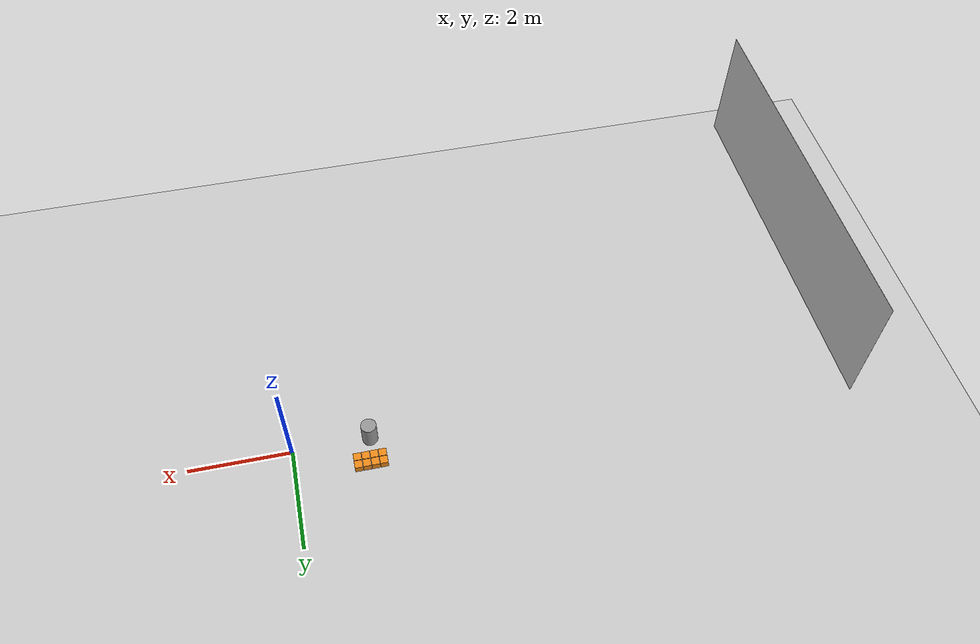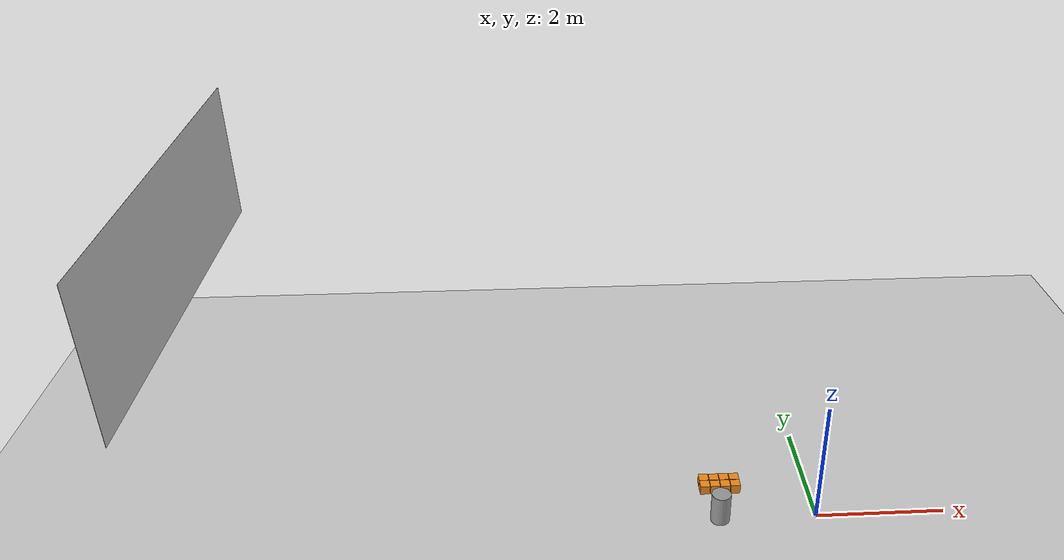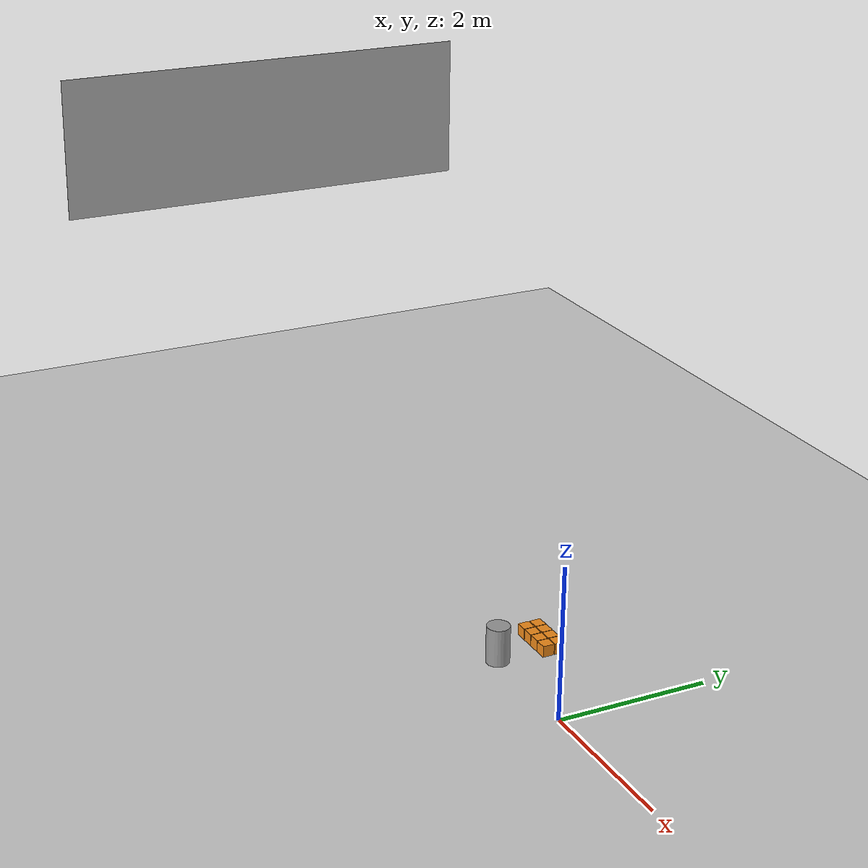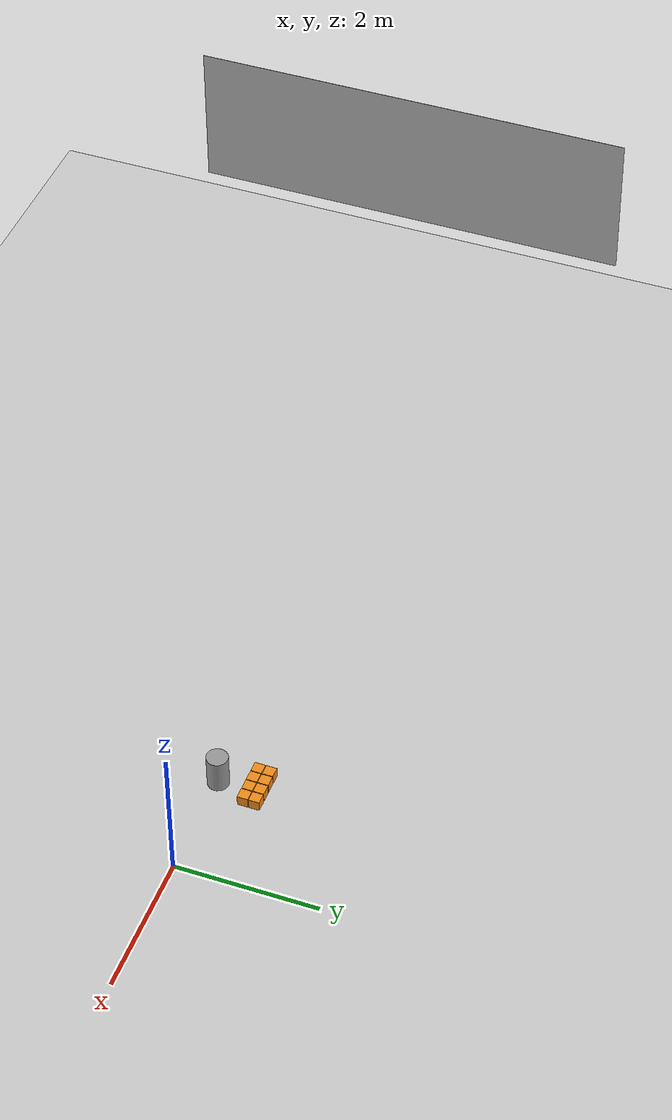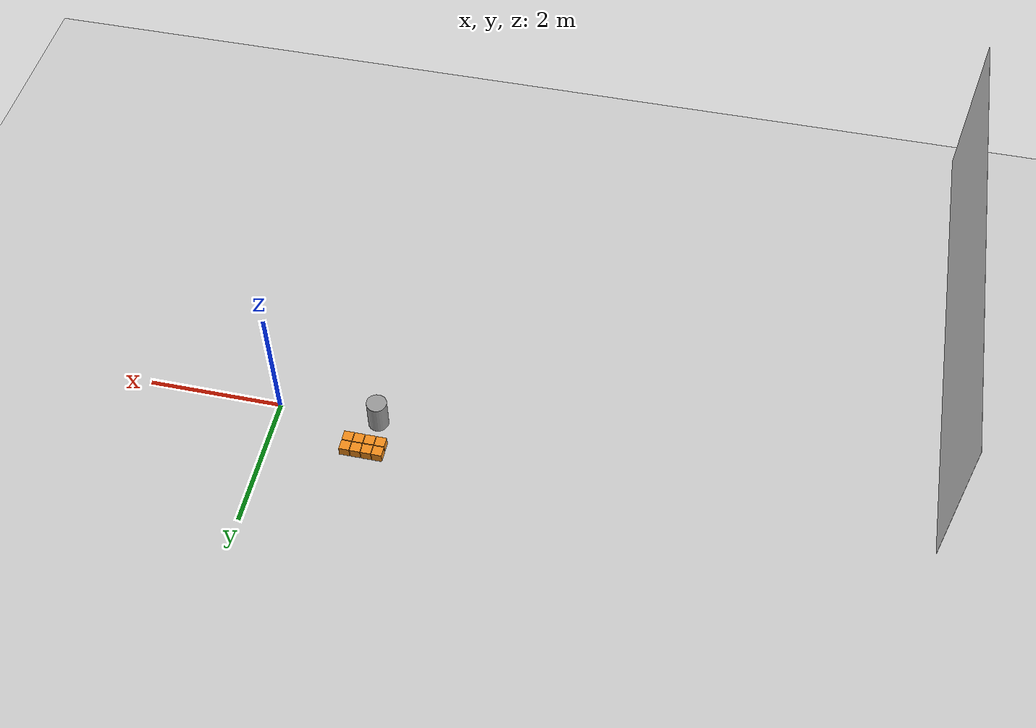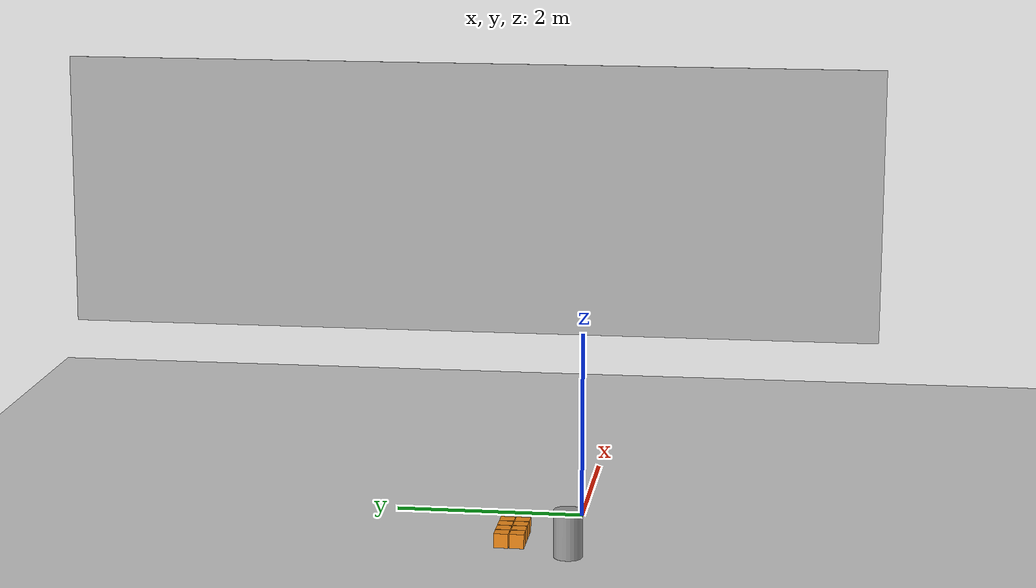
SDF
<sdf version="1.7">
 <world name="default">
  <plugin name="ros_link_attacher_plugin" filename="libgazebo_ros_link_attacher.so"/>
  <light name="sun" type="directional">
   <pose>0 0 10 0 -0 0</pose>
   <diffuse>0.8 0.8 0.8 1</diffuse>
   <specular>0.2 0.2 0.2 1</specular>
   <attenuation>
    <range>1000</range>
    <constant>0.9</constant>
    <linear>0.01</linear>
    <quadratic>0.001</quadratic>
   </attenuation>
   <direction>-0.5 0.1 -0.9</direction>
   <spot><inner_angle>0</inner_angle><outer_angle>0</outer_angle><falloff>0</falloff></spot>
  </light>
  <model name="ground_plane">
   <static>1</static>
   <link name="link">
    <collision name="collision">
     <geometry><plane><normal>0 0 1</normal><size>50 50</size></plane></geometry>
     <surface><friction><ode><mu>100</mu><mu2>50</mu2></ode></friction></surface>
    </collision>
    <visual name="visual">
     <cast_shadows>0</cast_shadows>
     <geometry><plane><normal>0 0 1</normal><size>100 100</size></plane></geometry>
     <material>
      <script><uri>file://media/materials/scripts/gazebo.material</uri><name>Gazebo/Grey</name></script>
     </material>
    </visual>
   </link>
  </model>
  <gravity>0 0 -9.81</gravity>
  <magnetic_field>6e-06 2.3e-05 -4.2e-05</magnetic_field>
  <atmosphere type="adiabatic"/>
  <physics name="default_physics" default="0" type="ode">
   <max_step_size>0.001</max_step_size>
   <real_time_factor>1</real_time_factor>
   <real_time_update_rate>1000</real_time_update_rate>
  </physics>
  <scene><ambient>0.4 0.4 0.4 1</ambient><background>0.7 0.7 0.7 1</background><shadows>1</shadows></scene>
  <audio><device>default</device></audio>
  <spherical_coordinates>
   <surface_model>EARTH_WGS84</surface_model>
   <latitude_deg>0</latitude_deg>
   <longitude_deg>0</longitude_deg>
   <elevation>0</elevation>
   <heading_deg>0</heading_deg>
  </spherical_coordinates>
  <model name="mcfly_sheet">
   <static>1</static>
   <link name="mcfly_sheet_link">
    <visual name="mcfly_sheet_visual">
     <cast_shadows>0</cast_shadows>
     <geometry><plane><normal>0 0 1</normal><size>6 2</size></plane></geometry>
     <material>
      <script>
       <uri>model://mcfly_sheet/materials/scripts</uri>
       <uri>model://mcfly_sheet/materials/textures</uri>
       <name>mcfly_sheet</name>
      </script>
     </material>
    </visual>
   </link>
   <pose>-8.8 0 5 1.57 -0 1.57</pose>
  </model>
  <model name="unit_cylinder">
   <static>1</static>
   <link name="link">
    <inertial>
     <mass>1</mass>
     <inertia><ixx>0.145833</ixx><ixy>0</ixy><ixz>0</ixz><iyy>0.145833</iyy><iyz>0</iyz><izz>0.125</izz></inertia>
    </inertial>
    <visual name="visual">
     <geometry><cylinder><radius>0.15</radius><length>0.5</length></cylinder></geometry>
     <material>
      <script><name>Gazebo/Grey</name><uri>file://media/materials/scripts/gazebo.material</uri></script>
      <shader type="pixel"><normal_map>__default__</normal_map></shader>
      <ambient>0.3 0.3 0.3 1</ambient>
      <diffuse>0.7 0.7 0.7 1</diffuse>
      <specular>0.01 0.01 0.01 1</specular>
      <emissive>0 0 0 1</emissive>
     </material>
    </visual>
    <collision name="collision">
     <geometry><cylinder><radius>0.15</radius><length>0.5</length></cylinder></geometry>
     <surface>
      <friction>
       <ode><mu>1</mu><mu2>1</mu2><fdir1>0 0 0</fdir1><slip1>0</slip1><slip2>0</slip2></ode>
       <torsional>
        <coefficient>1</coefficient>
        <patch_radius>0</patch_radius>
        <surface_radius>0</surface_radius>
        <use_patch_radius>1</use_patch_radius>
        <ode><slip>0</slip></ode>
       </torsional>
      </friction>
      <bounce><restitution_coefficient>0</restitution_coefficient><threshold>1e+06</threshold></bounce>
      <contact>
       <collide_without_contact>0</collide_without_contact>
       <collide_without_contact_bitmask>1</collide_without_contact_bitmask>
       <collide_bitmask>1</collide_bitmask>
       <ode>
        <soft_cfm>0</soft_cfm>
        <soft_erp>0.2</soft_erp>
        <kp>1e+13</kp>
        <kd>1</kd>
        <max_vel>0.01</max_vel>
        <min_depth>0</min_depth>
       </ode>
       <bullet>
        <split_impulse>1</split_impulse>
        <split_impulse_penetration_threshold>-0.01</split_impulse_penetration_threshold>
        <soft_cfm>0</soft_cfm>
        <soft_erp>0.2</soft_erp>
        <kp>1e+13</kp>
        <kd>1</kd>
       </bullet>
      </contact>
     </surface>
    </collision>
   </link>
   <static>0</static>
   <pose>-1.50008 1.3e-05 0.249992 4e-06 2e-06 0.001823</pose>
  </model>
  <include><name>unit_box1</name><pose>-1.2 0.5 0.22 0 0 0 0</pose><uri>model://unit_box</uri></include>
  <include><name>unit_box2</name><pose>-1.36 0.5 0.22 0 0 0 0</pose><uri>model://unit_box</uri></include>
  <include><name>unit_box3</name><pose>-1.52 0.5 0.22 0 0 0 0</pose><uri>model://unit_box</uri></include>
  <include><name>unit_box4</name><pose>-1.68 0.5 0.22 0 0 0 0</pose><uri>model://unit_box</uri></include>
  <include><name>unit_box5</name><pose>-1.2 0.66 0.22 0 0 0 0</pose><uri>model://unit_box</uri></include>
  <include><name>unit_box6</name><pose>-1.36 0.66 0.22 0 0 0 0</pose><uri>model://unit_box</uri></include>
  <include><name>unit_box7</name><pose>-1.52 0.66 0.22 0 0 0 0</pose><uri>model://unit_box</uri></include>
  <include><name>unit_box8</name><pose>-1.68 0.66 0.22 0 0 0 0</pose><uri>model://unit_box</uri></include>
 </world>
</sdf>

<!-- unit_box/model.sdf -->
<sdf version='1.7'>
  <model name='unit_box'>
    <link name='link'>
      <inertial>
        <mass>3</mass>
        <inertia>
          <ixx>0.166667</ixx>
          <ixy>0</ixy>
          <ixz>0</ixz>
          <iyy>0.166667</iyy>
          <iyz>0</iyz>
          <izz>0.166667</izz>
        </inertia>
        <pose>0 0 0 0 -0 0</pose>
      </inertial>
      <self_collide>0</self_collide>
      <enable_wind>0</enable_wind>
      <kinematic>0</kinematic>
      <pose>0 0 0 0 -0 0</pose>
      <gravity>1</gravity>
      <visual name='visual'>
        <geometry>
          <box>
            <size>0.15 0.15 0.15</size>
          </box>
        </geometry>
        <material>
          <script>
            <name>Gazebo/Orange</name>
            <uri>file://media/materials/scripts/gazebo.material</uri>
          </script>
          <shader type='pixel'>
            <normal_map>__default__</normal_map>
          </shader>
          <ambient>0.9 0.8 0.2 1</ambient>
          <diffuse>0.7 0.7 0.7 1</diffuse>
          <specular>0.01 0.01 0.01 1</specular>
          <emissive>0 0 0 1</emissive>
        </material>
        <pose>0 0 0 0 -0 0</pose>
        <transparency>0</transparency>
        <cast_shadows>1</cast_shadows>
      </visual>
      <collision name='collision'>
        <laser_retro>0</laser_retro>
        <max_contacts>10</max_contacts>
        <pose>0 0 0 0 -0 0</pose>
        <geometry>
          <box>
            <size>0.15 0.15 0.15</size>
          </box>
        </geometry>
        <surface>
          <friction>
            <ode>
              <mu>1000</mu>
              <mu2>1000</mu2>
              <fdir1>0 0 0</fdir1>
              <slip1>0</slip1>
              <slip2>0</slip2>
            </ode>
            <torsional>
              <coefficient>1000</coefficient>
              <patch_radius>0</patch_radius>
              <surface_radius>0</surface_radius>
              <use_patch_radius>1</use_patch_radius>
              <ode>
                <slip>0</slip>
              </ode>
            </torsional>
          </friction>
          <bounce>
            <restitution_coefficient>0</restitution_coefficient>
            <threshold>1e+06</threshold>
          </bounce>
          <contact>
            <collide_without_contact>0</collide_without_contact>
            <collide_without_contact_bitmask>1</collide_without_contact_bitmask>
            <collide_bitmask>1</collide_bitmask>
            <ode>
              <soft_cfm>0</soft_cfm>
              <soft_erp>0.2</soft_erp>
              <kp>1e+13</kp>
              <kd>1</kd>
              <max_vel>0.01</max_vel>
              <min_depth>0</min_depth>
            </ode>
            <bullet>
              <split_impulse>1</split_impulse>
              <split_impulse_penetration_threshold>-0.01</split_impulse_penetration_threshold>
              <soft_cfm>0</soft_cfm>
              <soft_erp>0.2</soft_erp>
              <kp>1e+13</kp>
              <kd>1</kd>
            </bullet>
          </contact>
        </surface>
      </collision>
    </link>
    <static>0</static>
    <allow_auto_disable>1</allow_auto_disable>
  </model>
</sdf>
